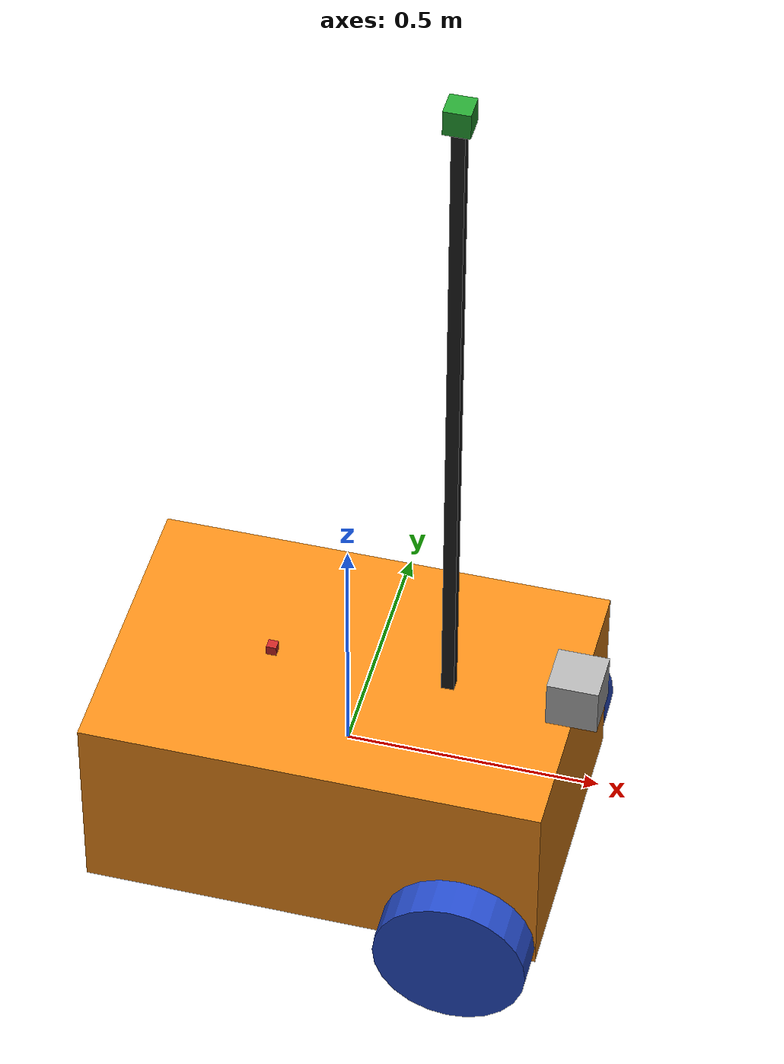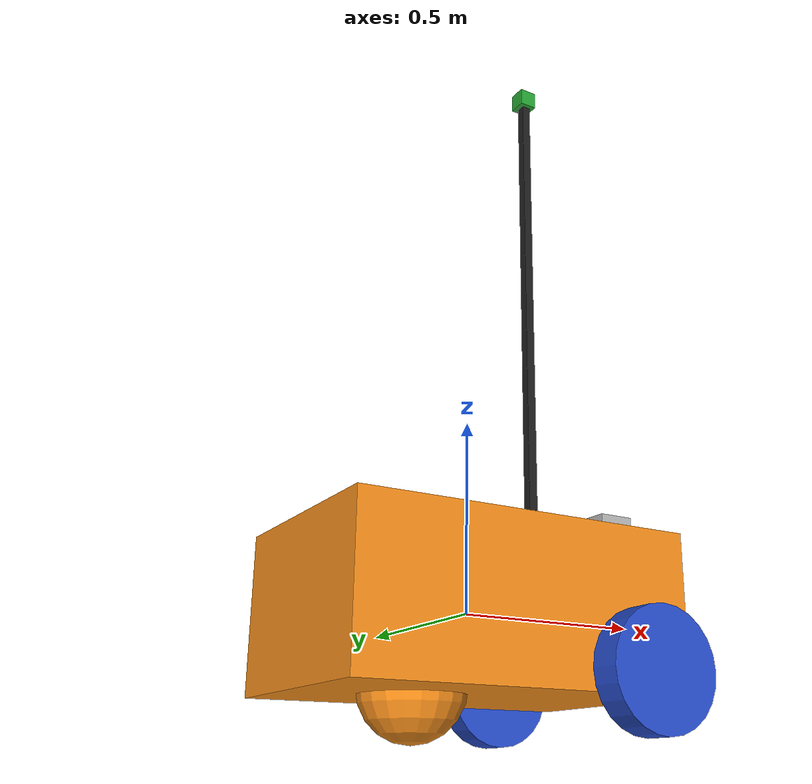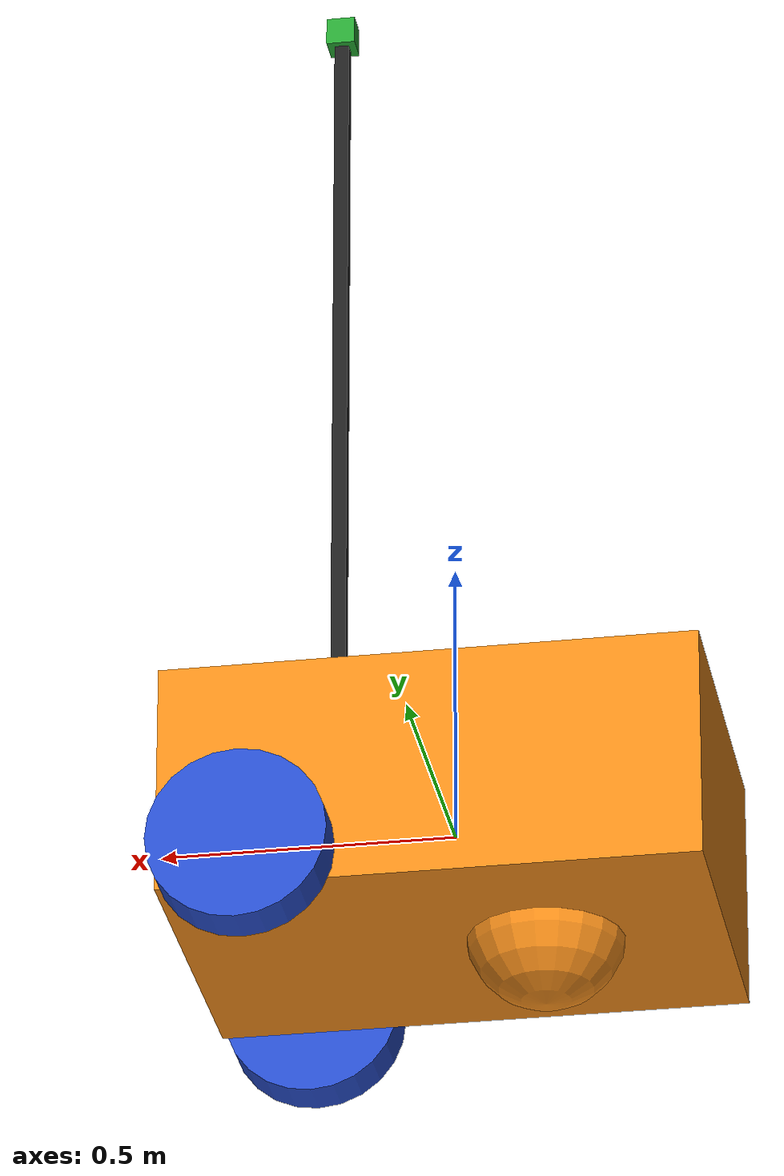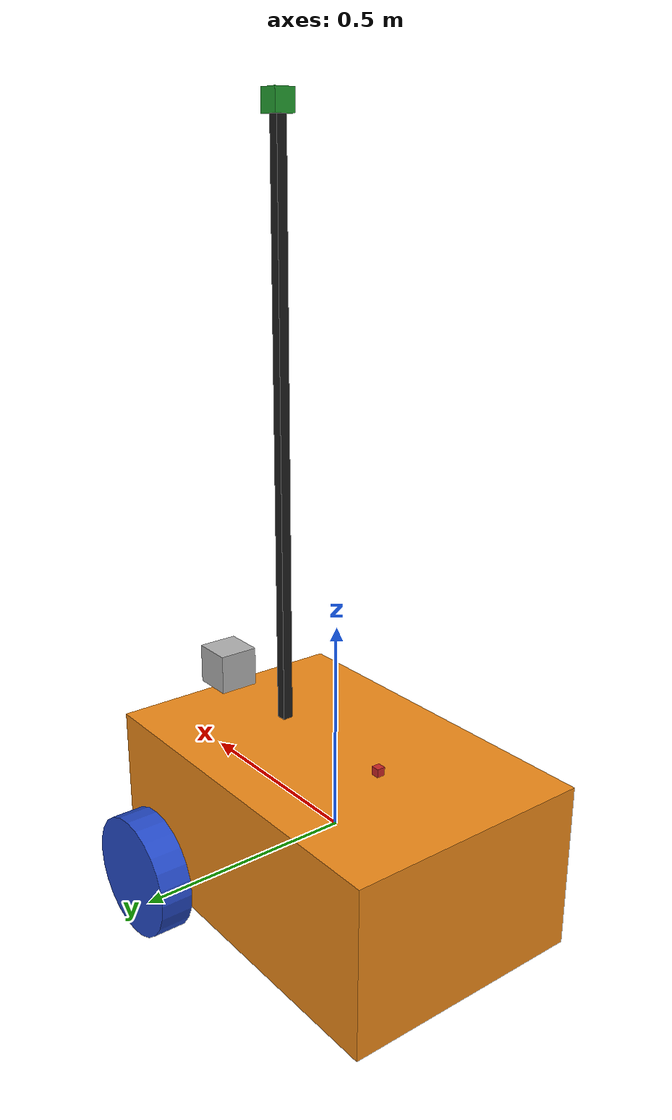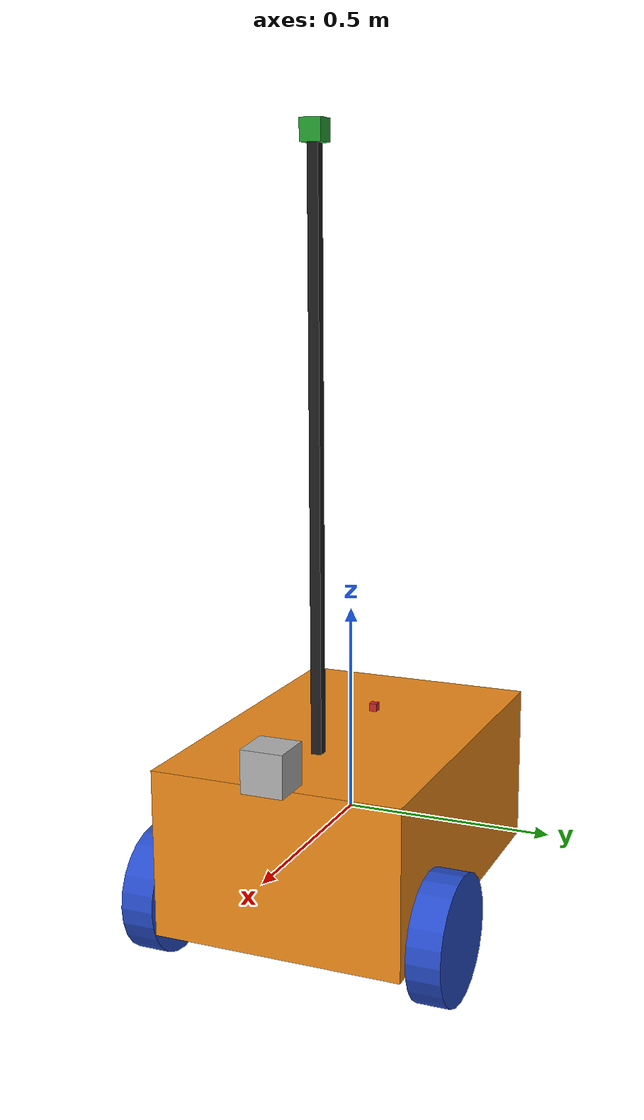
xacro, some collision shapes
<?xml version='1.0'?>

<robot name="myrobot"
  xmlns:xacro="http://www.ros.org/wiki/xacro">

  <xacro:property name="cameraSize" value="0.05"/>
  <xacro:property name="cameraMass" value="0.1"/>

  <xacro:include filename="$(find mybot_description)/urdf/mybot.gazebo" />
  <xacro:include filename="$(find mybot_description)/urdf/materials.xacro" />
  <xacro:include filename="$(find mybot_description)/urdf/macros.xacro" />
  <xacro:include filename="$(find mybot_description)/urdf/gps.urdf.xacro" />
  <xacro:gps parent="base_link"></xacro:gps>

  <link name="dummy">
  </link>

  <link name='base_link'>
    <pose>0 0 0.5 0 0 0</pose>

    <inertial>
      <mass value="15.0"/>
      <origin xyz="0.0 0 0.1" rpy=" 0 0 0"/>
      <inertia ixx="0.1" ixy="0" ixz="0" iyy="0.1" iyz="0" izz="0.1" />
    </inertial>

    <collision name='collision'>
      <geometry>
        <box size=".9 .6 .4"/>
      </geometry>
    </collision>

    <visual name='base_link_visual'>
      <origin xyz="0 0 0" rpy=" 0 0 0"/>
      <geometry>
        <box size=".9 .6 .4"/>
      </geometry>
    </visual>

    <collision name='caster_collision'>
      <origin xyz="-0.15 0 -0.18" rpy=" 0 0 0"/>
      <geometry>
        <sphere radius="0.135"/>
      </geometry>
      <surface>
        <friction>
          <ode>
            <mu>1000</mu>
            <mu2>1000</mu2>
            <slip1>0.0</slip1>
            <slip2>0.0</slip2>
          </ode>
        </friction>
      </surface>
    </collision>

    <visual name='caster_visual'>
      <origin xyz="-0.15 0 -0.18" rpy=" 0 0 0"/>
      <geometry>
        <sphere radius="0.135"/>
      </geometry>
    </visual>
  </link>

  <joint name="dummy_joint" type="fixed">
  	<parent link="dummy"/>
  	<child link="base_link"/>
  </joint>

  <link name="left_wheel">
    <!--origin xyz="0.1 0.13 0.1" rpy="0 1.5707 1.5707"/-->
    <collision name="collision">
      <origin xyz="0 0 0" rpy="0 1.5707 1.5707"/>
      <geometry>
        <cylinder radius="0.15" length="0.08"/>
      </geometry>
 <surface>
        <friction>
          <ode>
            <mu>10.0</mu>
            <mu2>10.0</mu2>
          </ode>
        </friction>
      </surface>
    </collision>
    <visual name="left_wheel_visual">
      <origin xyz="0 0 0" rpy="0 1.5707 1.5707"/>
      <geometry>
        <cylinder radius="0.15" length="0.08"/>
      </geometry>
    </visual>
    <inertial>
      <origin xyz="0 0 0" rpy="0 1.5707 1.5707"/>
      <mass value="5"/>
      <inertia ixx=".1" ixy="0.0" ixz="0.0" iyy=".1" iyz="0.0" izz=".1"/>
    </inertial>
  </link>

  <link name="right_wheel">
    <!--origin xyz="0.1 -0.13 0.1" rpy="0 1.5707 1.5707"/-->
    <collision name="collision">
      <origin xyz="0 0 0" rpy="0 1.5707 1.5707"/>
      <geometry>
        <cylinder radius="0.15" length="0.08"/>
      </geometry>
            <surface>
        <friction>
          <ode>
            <mu>10.0</mu>
            <mu2>10.0</mu2>
          </ode>
        </friction>
      </surface>
    </collision>
    <visual name="right_wheel_visual">
      <origin xyz="0 0 0" rpy="0 1.5707 1.5707"/>
      <geometry>
        <cylinder radius="0.15" length="0.08"/>
      </geometry>
    </visual>
    <inertial>
      <origin xyz="0 0 0" rpy="0 1.5707 1.5707"/>
      <mass value="5"/>
      <inertia ixx=".1" ixy="0.0" ixz="0.0" iyy=".1" iyz="0.0" izz=".1"/>
    </inertial>
  </link>

  <joint type="continuous" name="left_wheel_hinge">
    <origin xyz="0.3 0.35 -0.15" rpy="0 0 0"/>
    <!--origin xyz="0.1 0.13 0" rpy="0 1.5707 1.5707"/-->
    <child link="left_wheel"/>
    <parent link="base_link"/>
    <axis xyz="0 1 0" rpy="0 0 0"/>
    <limit effort="10000" velocity="1000"/>
    <joint_properties damping="1.0" friction="1000"/>
  </joint>

  <joint type="continuous" name="right_wheel_hinge">
    <origin xyz="0.3 -0.35 -0.15" rpy="0 0 0"/>
    <!--origin xyz="0.1 -0.13 0" rpy="0 1.5707 1.5707"/-->
    <child link="right_wheel"/>
    <parent link="base_link"/>
    <axis xyz="0 1 0" rpy="0 0 0"/>
    <limit effort="10000" velocity="1000"/>
    <joint_properties damping="1.0" friction="1000"/>
  </joint>

  <link name="camera">
    <collision>
      <origin xyz="0 0 0.5" rpy="0 0 0"/>
      <geometry>
        <box size="${cameraSize} ${cameraSize} ${cameraSize}"/>
      </geometry>
    </collision>

    <visual>
      <origin xyz="0 0 0.5" rpy="0 0 0"/>
      <geometry>
        <box size="${cameraSize} ${cameraSize} ${cameraSize}"/>
      </geometry>
      <material name="green"/>
    </visual>

    <inertial>
      <mass value="${cameraMass}" />
      <origin xyz="0 0 0.5" rpy="0 0 0"/>
      <box_inertia m="${cameraMass}" x="${cameraSize}" y="${cameraSize}" z="${cameraSize}" />
      <inertia ixx="1e-6" ixy="0" ixz="0" iyy="1e-6" iyz="0" izz="1e-6" />
    </inertial>
  </link>

  <joint name="camera_joint" type="fixed">
    <axis xyz="0 0 0" />
    <origin xyz="0 0 0.3" rpy="0 0 0"/>
    <parent link="camera_stick"/>
    <child link="camera"/>
  </joint>

  <link name="camera_stick">
    <collision>
      <origin xyz="0 0 0" rpy="0 0 0"/>
      <geometry>
        <box size="${cameraSize/2} ${cameraSize/2} 1.37"/>
      </geometry>
    </collision>

    <visual>
      <origin xyz="0 0 0.1" rpy="0 0 0"/>
      <geometry>
        <box size="${cameraSize/2} ${cameraSize/2} 1.37"/>
      </geometry>
      <material name="black"/>
    </visual>

    <inertial>
      <mass value="${cameraMass}" />
      <origin xyz="0 0 0.1" rpy="0 0 0"/>
      <box_inertia m="${cameraMass}" x="${cameraSize}" y="${cameraSize}" z="${cameraSize}" />
      <inertia ixx="1e-6" ixy="0" ixz="0" iyy="1e-6" iyz="0" izz="1e-6" />
    </inertial>
  </link>

  <joint name="camera_stick_joint" type="fixed">
    <axis xyz="0 0 0" />
    <origin xyz="0.2 0 0.786" rpy="0 0 0"/>
    <parent link="base_link"/>
    <child link="camera_stick"/>
  </joint>

  <joint name="laser_joint" type="fixed">
    <axis xyz="0 0 0" />
    <origin xyz=".45 0 .25" rpy="0 0 0"/>
    <parent link="base_link"/>
    <child link="laser"/>
  </joint>

  <!-- Hokuyo Laser -->
  <link name="laser">
    <collision>
      <origin xyz="0 0 0" rpy="0 0 0"/>
      <geometry>
        <box size="0.1 0.1 0.1"/>
      </geometry>
    </collision>

    <visual>
      <origin xyz="0 0 0" rpy="0 0 0"/>
      <geometry>
        <mesh filename="package://mybot_description/meshes/hokuyo.dae"/>
      </geometry>
    </visual>

    <inertial>
      <mass value="1e-5" />
      <origin xyz="0 0 0" rpy="0 0 0"/>
      <inertia ixx="1e-6" ixy="0" ixz="0" iyy="1e-6" iyz="0" izz="1e-6" />
    </inertial>
  </link>

</robot>

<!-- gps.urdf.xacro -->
<robot name="gps"
    xmlns:xacro="http://www.ros.org/wiki/xacro">
    <xacro:macro name="gps" params="parent">
        <xacro:property name="height1" value="0.02" />
        <xacro:property name="width" value="0.02" />
        <!-- Used for fixing robot to Gazebo 'base_link' -->

        <joint name="gps_link" type="fixed">
            <axis xyz="0 0 0" />
            <origin xyz="-0.15 0 0.2" rpy="0 0 0"/>
            <parent link="${parent}"/>
            <child link="sensor"/>
        </joint>

        <!-- Base Link -->
        <link name="sensor">
            <collision>
                <origin xyz="0 0 ${height1/2}" rpy="0 0 0"/>
                <geometry>
                    <box size="${width} ${width} ${height1}"/>
                </geometry>
            </collision>

            <visual>
                <origin xyz="0 0 ${height1/2}" rpy="0 0 0"/>
                <geometry>
                    <box size="${width} ${width} ${height1}"/>
                </geometry>
            </visual>

            <inertial>
                <origin xyz="0 0 1" rpy="0 0 0"/>
                <mass value="1e-4"/>
                <inertia ixx="1.0" ixy="0.0" ixz="0.0" iyy="1.0" iyz="0.0" izz="1.0"/>
            </inertial>
        </link>

        <gazebo reference="sensor">
            <material>Gazebo/Red</material>
        </gazebo>

        <gazebo>
            <plugin name="gazebo_ros_gps" filename="libhector_gazebo_ros_gps.so">
                <alwaysOn>1</alwaysOn>
                <updateRate>14.0</updateRate>
                <bodyName>sensor</bodyName>
                <frameId>sensor</frameId>
                <topicName>/gps/fix</topicName>
                <velocityTopicName>/gps/fix_velocity</velocityTopicName>
                <referenceLatitude>-30.06022459407145675</referenceLatitude>
                <referenceLongitude>-51.173913575780311191</referenceLongitude>
                <referenceHeading>90</referenceHeading>
                <referenceAltitude>10</referenceAltitude>
                <offset>0 0 0</offset>
                <drift>0.001 0.001 0.001</drift>
                <gaussianNoise>0.05 0.05 0.05</gaussianNoise>
                <velocityDrift>0.001 0.001 0.001</velocityDrift>
                <velocityGaussianNoise>0.5 0.5 0.5</velocityGaussianNoise>
            </plugin>
        </gazebo>
    </xacro:macro>
</robot>
